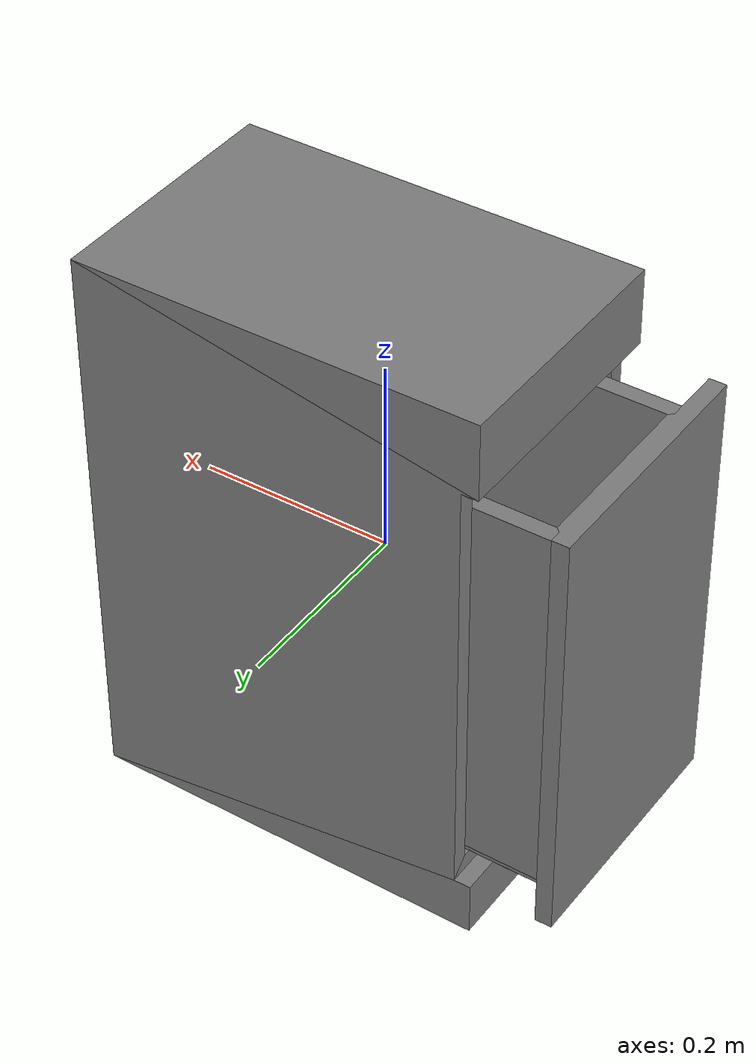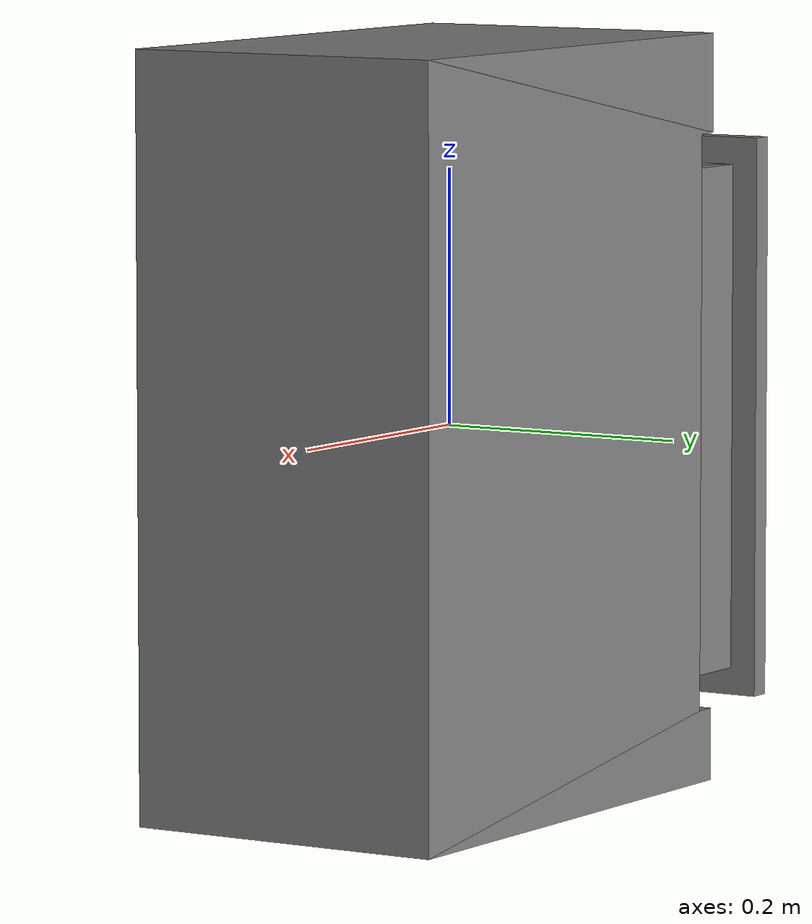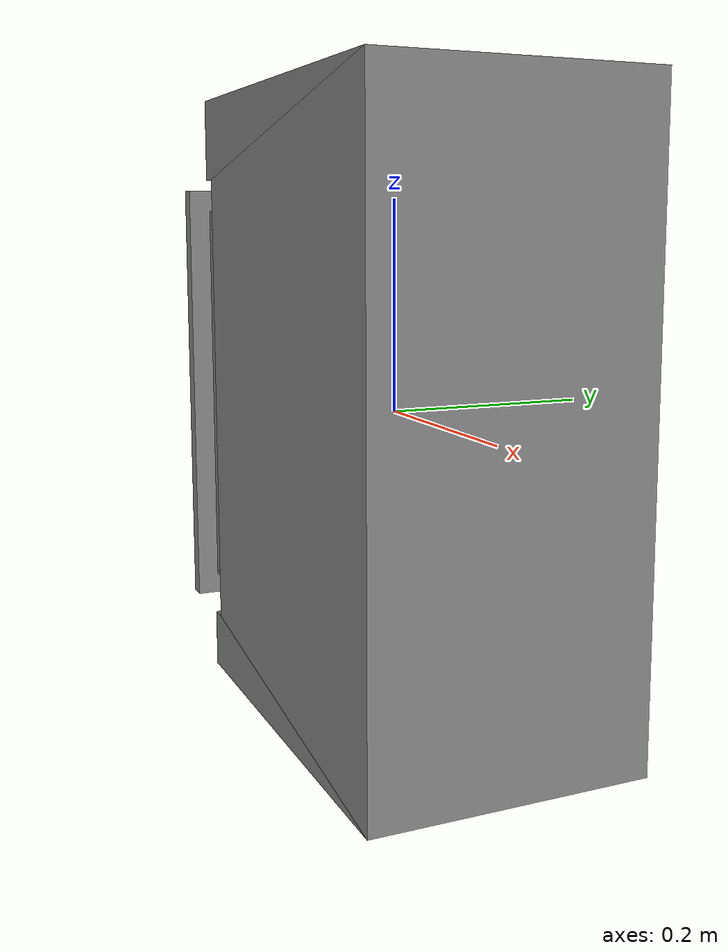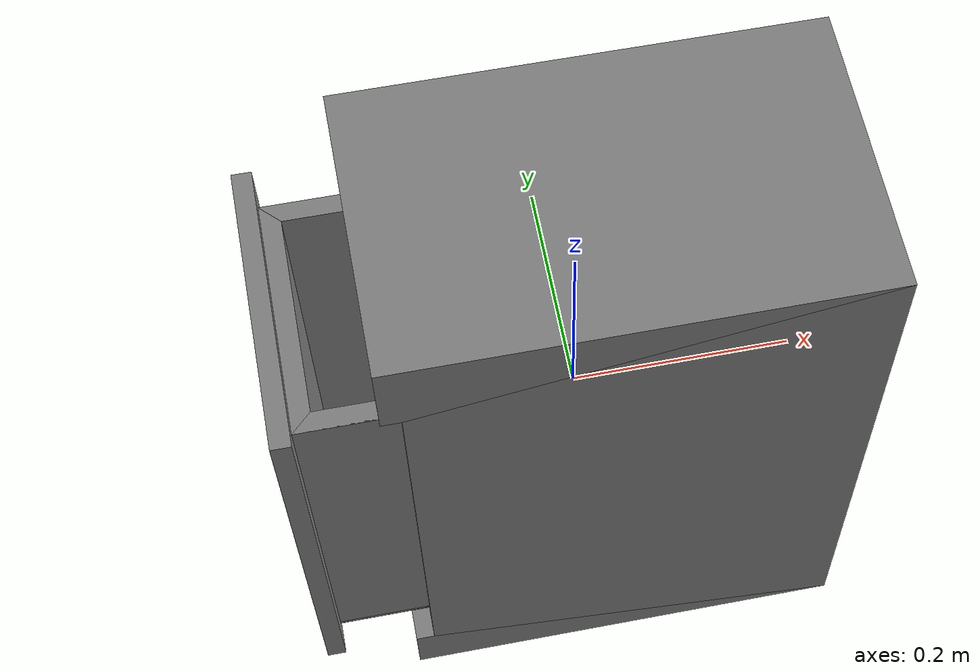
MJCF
<mujoco model="partnet_e19887ca50862a434c86b1fdc94892eb">
    <compiler angle="radian" />
    <size njmax="500" nconmax="100" />
    <asset>
        <mesh name="new-7" file="new-7.stl" scale="0.4 0.4 0.4" />
        <mesh name="new-6" file="new-6.stl" scale="0.4 0.4 0.4" />
        <mesh name="new-9" file="new-9.stl" scale="0.4 0.4 0.4" />
        <mesh name="new-8" file="new-8.stl" scale="0.4 0.4 0.4" />
        <mesh name="new-3" file="new-3.stl" scale="0.4 0.4 0.4" />
        <mesh name="new-4" file="new-4.stl" scale="0.4 0.4 0.4" />
        <mesh name="new-5" file="new-5.stl" scale="0.4 0.4 0.4" />
        <mesh name="new-1" file="new-1.stl" scale="0.4 0.4 0.4" />
        <mesh name="new-2" file="new-2.stl" scale="0.4 0.4 0.4" />
        <mesh name="new-0" file="new-0.stl" scale="0.4 0.4 0.4" />
    </asset>
    <worldbody>
    <body>
        <body name="object">
        <geom quat="0.5 0.5 -0.5 -0.5" type="mesh" group="0" mesh="new-1" conaffinity="0" contype="0" />
        <geom quat="0.5 0.5 -0.5 -0.5" type="mesh" group="0" mesh="new-2" conaffinity="0" contype="0" />
        <geom quat="0.5 0.5 -0.5 -0.5" type="mesh" group="0" mesh="new-0" conaffinity="0" contype="0" />
        <body name="link_0" pos="0.0 0.0 0.0" quat="0.5 0.5 -0.5 -0.5">
            <inertial pos="-0.002685432 0.02405416 0.12565120000000002" quat="0.905341 0.422676 -0.00552584 -0.0408932" mass="136.137" diaginertia="29.5371 21.9492 18.6081" />
            <joint name="joint_0" pos="0.0 0.0 0.0" axis="0 0 1" type="slide" limited="true" range="-0.0848 0.21600000000000003" />
            <geom type="mesh" group="0" mesh="new-7" />
            <geom type="mesh" group="0" mesh="new-6" />
            <geom type="mesh" group="0" mesh="new-9" />
            <geom type="mesh" group="0" mesh="new-8" />
            <geom type="mesh" group="0" mesh="new-3" />
            <geom type="mesh" group="0" mesh="new-4" />
            <geom type="mesh" group="0" mesh="new-5" />
        </body>
    </body>
        <site name="bottom_site" pos="0 0 -0.3" rgba="0 0 0 0" size="0.005" />
        <site name="top_site" pos="0 0 0.3" rgba="0 0 0 0" size="0.005" />
        <site name="horizontal_radius_site" pos="0.3 0 0" rgba="0 0 0 0" size="0.1" />
    </body>
    </worldbody>
</mujoco>
